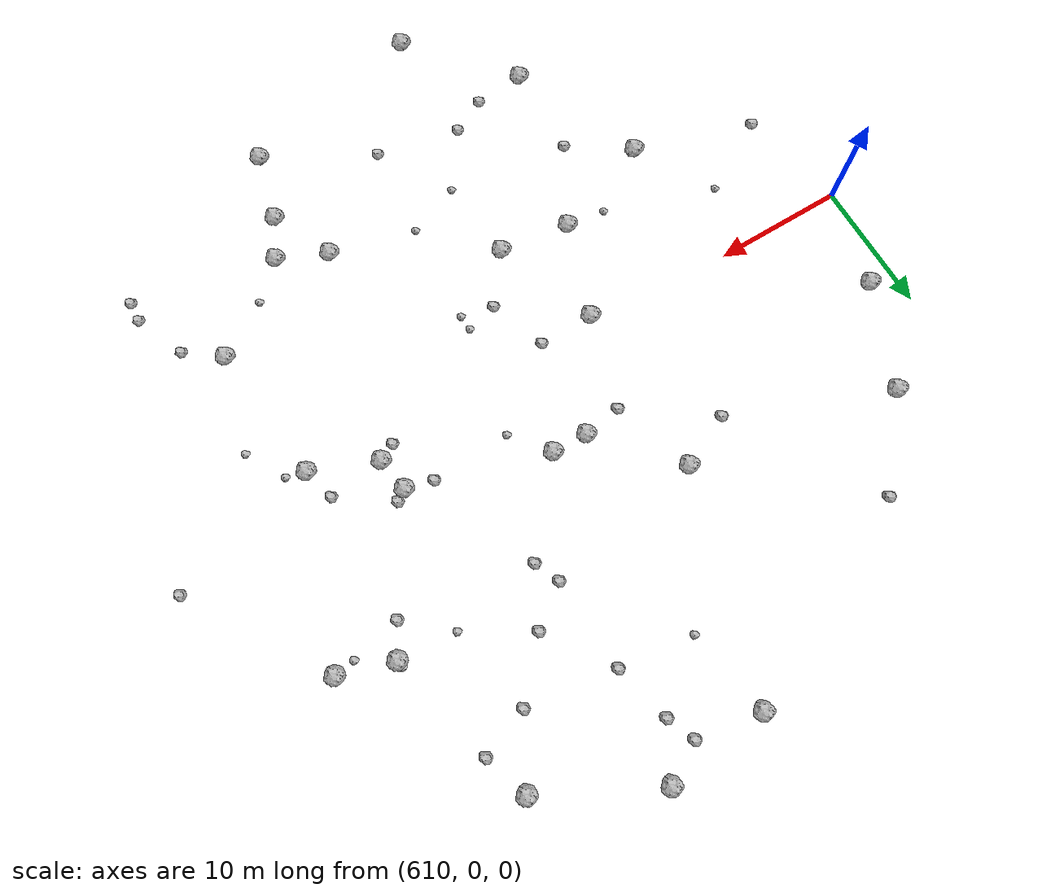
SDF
<sdf version="1.6">
 <world name="default">
  <include><uri>model://sun</uri></include>
  <model name="rock1_16_3">
   <include><uri>model://rock1</uri><pose>645.2883435232775 -15.284835188420232 0.5 0 0 0</pose></include>
  </model>
  <model name="rock1_16_4">
   <include><uri>model://rock1</uri><pose>659.3401741671905 12.22725962496655 0.5 0 0 0</pose></include>
  </model>
  <model name="rock1_16_5">
   <include><uri>model://rock1</uri><pose>612.0061441329585 7.340285646826217 0.5 0 0 0</pose></include>
  </model>
  <model name="rock1_16_6">
   <include><uri>model://rock1</uri><pose>621.0170639969236 -11.023205851685763 0.5 0 0 0</pose></include>
  </model>
  <model name="rock1_16_7">
   <include><uri>model://rock1</uri><pose>638.9208408214057 6.46453996004594 0.5 0 0 0</pose></include>
  </model>
  <model name="rock1_16_8">
   <include><uri>model://rock1</uri><pose>615.2987433599393 15.086284398079655 0.5 0 0 0</pose></include>
  </model>
  <model name="rock1_16_9">
   <include><uri>model://rock1</uri><pose>631.1867833439953 -1.017149926768795 0.5 0 0 0</pose></include>
  </model>
  <model name="rock1_16_10">
   <include><uri>model://rock1</uri><pose>643.9622136894417 29.43516340858868 0.5 0 0 0</pose></include>
  </model>
  <model name="rock1_16_11">
   <include><uri>model://rock1</uri><pose>655.3018505866204 13.486080666595072 0.5 0 0 0</pose></include>
  </model>
  <model name="rock1_16_12">
   <include><uri>model://rock1</uri><pose>636.2495198441942 28.611620514720492 0.5 0 0 0</pose></include>
  </model>
  <model name="rock1_16_13">
   <include><uri>model://rock1</uri><pose>628.7856671276589 -8.154962733759675 0.5 0 0 0</pose></include>
  </model>
  <model name="rock1_16_14">
   <include><uri>model://rock1</uri><pose>631.8120621697954 -28.64423953239874 0.5 0 0 0</pose></include>
  </model>
  <model name="rock1_16_15">
   <include><uri>model://rock1</uri><pose>654.52945194204 -1.1658056556379286 0.5 0 0 0</pose></include>
  </model>
  <model name="rock1_16_16">
   <include><uri>model://rock1</uri><pose>636.2278118989295 6.539834393599229 0.5 0 0 0</pose></include>
  </model>
  <model name="rock1_16_17">
   <include><uri>model://rock1</uri><pose>649.6278669034813 0.8156639555047462 0.5 0 0 0</pose></include>
  </model>
  <model name="rock1_16_18">
   <include><uri>model://rock1</uri><pose>631.227010824177 12.159477518626503 0.5 0 0 0</pose></include>
  </model>
  <model name="rock1_16_19">
   <include><uri>model://rock1</uri><pose>646.1495667938019 -25.189708059021118 0.5 0 0 0</pose></include>
  </model>
  <model name="rock1_16_20">
   <include><uri>model://rock1</uri><pose>655.624047482692 -11.805445027947545 0.5 0 0 0</pose></include>
  </model>
  <model name="rock1_16_21">
   <include><uri>model://rock1</uri><pose>648.9626719327952 -16.921453984974395 0.5 0 0 0</pose></include>
  </model>
  <model name="rock1_16_22">
   <include><uri>model://rock1</uri><pose>652.2589036147642 25.148469995436898 0.5 0 0 0</pose></include>
  </model>
  <model name="rock1_16_23">
   <include><uri>model://rock1</uri><pose>634.1443958835272 -8.892716520464134 0.5 0 0 0</pose></include>
  </model>
  <model name="rock1_16_24">
   <include><uri>model://rock1</uri><pose>649.2245266124162 3.4222334912969288 0.5 0 0 0</pose></include>
  </model>
  <model name="rock1_16_25">
   <include><uri>model://rock1</uri><pose>625.3057579477276 -21.180081724849153 0.5 0 0 0</pose></include>
  </model>
  <model name="rock1_16_26">
   <include><uri>model://rock1</uri><pose>647.4846745056338 -19.99319019867525 0.5 0 0 0</pose></include>
  </model>
  <model name="rock2_16_0">
   <include><uri>model://rock2</uri><pose>631.8254297658494 -19.489855354617696 0.3 0 0 0</pose></include>
  </model>
  <model name="rock2_16_1">
   <include><uri>model://rock2</uri><pose>647.1161726110793 3.9551852921979958 0.3 0 0 0</pose></include>
  </model>
  <model name="rock2_16_2">
   <include><uri>model://rock2</uri><pose>638.1877013624629 -20.80792664401999 0.3 0 0 0</pose></include>
  </model>
  <model name="rock2_16_3">
   <include><uri>model://rock2</uri><pose>658.2332067768953 -13.777480275519324 0.3 0 0 0</pose></include>
  </model>
  <model name="rock2_16_4">
   <include><uri>model://rock2</uri><pose>653.3352842298738 21.818984782972684 0.3 0 0 0</pose></include>
  </model>
  <model name="rock2_16_5">
   <include><uri>model://rock2</uri><pose>620.4391280790662 21.22557786229163 0.3 0 0 0</pose></include>
  </model>
  <model name="rock2_16_6">
   <include><uri>model://rock2</uri><pose>611.8831292969021 -8.237374632307283 0.3 0 0 0</pose></include>
  </model>
  <model name="rock2_16_7">
   <include><uri>model://rock2</uri><pose>648.3517631914177 0.1439333435312271 0.3 0 0 0</pose></include>
  </model>
  <model name="rock2_16_8">
   <include><uri>model://rock2</uri><pose>659.7737215650116 -19.165962495977013 0.3 0 0 0</pose></include>
  </model>
  <model name="rock2_16_9">
   <include><uri>model://rock2</uri><pose>636.9170571870965 -5.257281995758699 0.3 0 0 0</pose></include>
  </model>
  <model name="rock2_16_10">
   <include><uri>model://rock2</uri><pose>654.0168270915345 11.129108563586918 0.3 0 0 0</pose></include>
  </model>
  <model name="rock2_16_11">
   <include><uri>model://rock2</uri><pose>659.8472286651648 -17.62220139322658 0.3 0 0 0</pose></include>
  </model>
  <model name="rock2_16_12">
   <include><uri>model://rock2</uri><pose>642.9176713158564 21.44761661815437 0.3 0 0 0</pose></include>
  </model>
  <model name="rock2_16_13">
   <include><uri>model://rock2</uri><pose>646.2076240694554 16.654831989626757 0.3 0 0 0</pose></include>
  </model>
  <model name="rock2_16_14">
   <include><uri>model://rock2</uri><pose>665.8691264931362 2.1384136954422175 0.3 0 0 0</pose></include>
  </model>
  <model name="rock2_16_15">
   <include><uri>model://rock2</uri><pose>653.876043920812 1.3344833470210276 0.3 0 0 0</pose></include>
  </model>
  <model name="rock2_16_16">
   <include><uri>model://rock2</uri><pose>643.2794550356082 14.474065417454064 0.3 0 0 0</pose></include>
  </model>
  <model name="rock2_16_17">
   <include><uri>model://rock2</uri><pose>625.4624762518055 -14.04672211312281 0.3 0 0 0</pose></include>
  </model>
  <model name="rock2_16_18">
   <include><uri>model://rock2</uri><pose>649.6621805644993 20.43087538089256 0.3 0 0 0</pose></include>
  </model>
  <model name="rock2_16_19">
   <include><uri>model://rock2</uri><pose>644.0925019634034 12.565476656052802 0.3 0 0 0</pose></include>
  </model>
  <model name="rock2_16_20">
   <include><uri>model://rock2</uri><pose>627.1935551631835 10.361852619425555 0.3 0 0 0</pose></include>
  </model>
  <model name="rock2_16_21">
   <include><uri>model://rock2</uri><pose>629.1439884122908 -20.842140615832154 0.3 0 0 0</pose></include>
  </model>
  <model name="rock2_16_22">
   <include><uri>model://rock2</uri><pose>641.051287337778 27.83312196035115 0.3 0 0 0</pose></include>
  </model>
  <model name="rock2_16_23">
   <include><uri>model://rock2</uri><pose>633.2625297484548 6.090048115080229 0.3 0 0 0</pose></include>
  </model>
  <model name="rock2_16_24">
   <include><uri>model://rock2</uri><pose>650.0506682301335 4.007490819784415 0.3 0 0 0</pose></include>
  </model>
  <model name="rock2_16_25">
   <include><uri>model://rock2</uri><pose>635.3478121074173 -0.9642519157427216 0.3 0 0 0</pose></include>
  </model>
  <model name="rock2_16_26">
   <include><uri>model://rock2</uri><pose>641.891763214069 25.75204603117632 0.3 0 0 0</pose></include>
  </model>
  <model name="rock3_16_0">
   <include><uri>model://rock3</uri><pose>655.1833568232317 13.974380840809701 0.2 0 0 0</pose></include>
  </model>
  <model name="rock3_16_1">
   <include><uri>model://rock3</uri><pose>639.3448523042355 -5.841290406238315 0.2 0 0 0</pose></include>
  </model>
  <model name="rock3_16_2">
   <include><uri>model://rock3</uri><pose>641.0595169956913 3.6746763284086867 0.2 0 0 0</pose></include>
  </model>
  <model name="rock3_16_3">
   <include><uri>model://rock3</uri><pose>650.900093585824 13.831612699146426 0.2 0 0 0</pose></include>
  </model>
  <model name="rock3_16_4">
   <include><uri>model://rock3</uri><pose>637.3198156525067 22.164188673620536 0.2 0 0 0</pose></include>
  </model>
  <model name="rock3_16_5">
   <include><uri>model://rock3</uri><pose>638.8106645465506 -13.66373099268801 0.2 0 0 0</pose></include>
  </model>
  <model name="rock3_16_6">
   <include><uri>model://rock3</uri><pose>639.2749456558522 -4.659897790576736 0.2 0 0 0</pose></include>
  </model>
  <model name="rock3_16_7">
   <include><uri>model://rock3</uri><pose>657.629386010882 -4.556661408205109 0.2 0 0 0</pose></include>
  </model>
  <model name="rock3_16_8">
   <include><uri>model://rock3</uri><pose>634.778726509551 -15.26909204933621 0.2 0 0 0</pose></include>
  </model>
  <model name="rock3_16_9">
   <include><uri>model://rock3</uri><pose>657.7510613478846 11.954890471904676 0.2 0 0 0</pose></include>
  </model>
  <model name="rock3_16_10">
   <include><uri>model://rock3</uri><pose>651.5577498846708 -14.451453062683298 0.2 0 0 0</pose></include>
  </model>
  <model name="rock3_16_11">
   <include><uri>model://rock3</uri><pose>617.4344955763646 -5.061303452354519 0.2 0 0 0</pose></include>
  </model>
  <model name="rock3_16_12">
   <include><uri>model://rock3</uri><pose>655.9697228319385 -1.5987588903274634 0.2 0 0 0</pose></include>
  </model>
  <model name="rock3_16_13">
   <include><uri>model://rock3</uri><pose>625.7539431570543 -7.785715218713442 0.2 0 0 0</pose></include>
  </model>
 </world>
</sdf>
